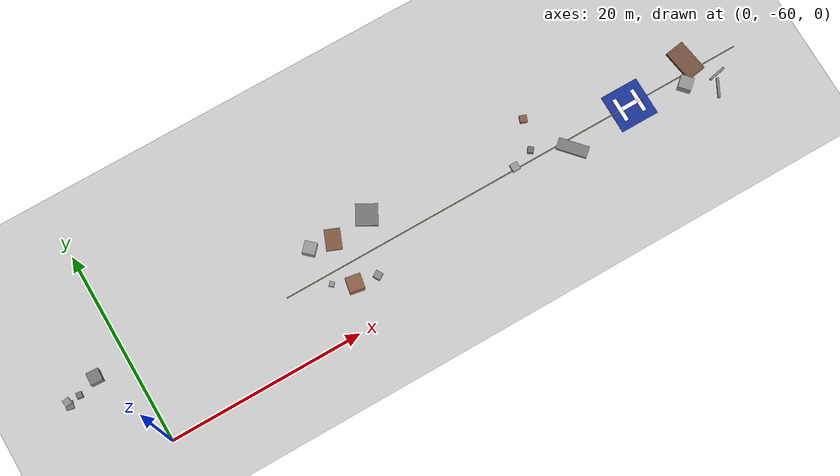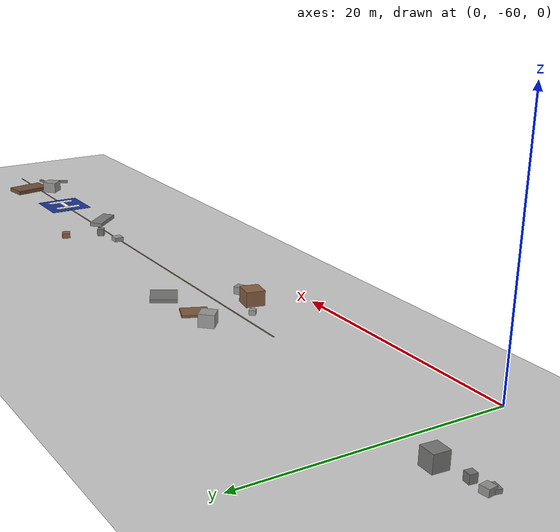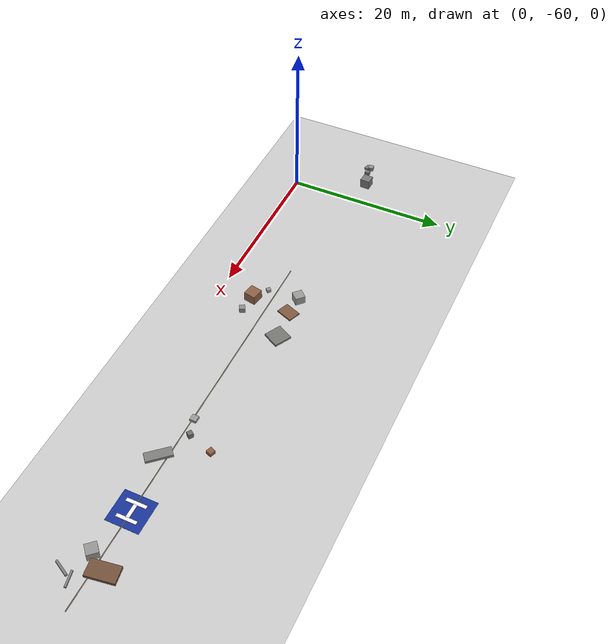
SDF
<sdf version="1.6">
 <world name="navitas_arena">
  <model name="ground_plane">
   <static>true</static>
   <link name="link">
    <collision name="collision">
     <geometry><plane><normal>0 0 1</normal><size>400 400</size></plane></geometry>
     <surface><friction><ode><mu>0.8</mu><mu2>0.8</mu2></ode></friction></surface>
    </collision>
    <visual name="visual">
     <cast_shadows>false</cast_shadows>
     <geometry><plane><normal>0 0 1</normal><size>400 400</size></plane></geometry>
     <material>
      <script><uri>file://media/materials/scripts/gazebo.material</uri><name>Gazebo/Grey</name></script>
     </material>
    </visual>
   </link>
  </model>
  <model name="gh_orta_2">
   <static>true</static>
   <pose>40.700 -53.600 0.010 0 0 0.000</pose>
   <link name="link">
    <collision name="col"><geometry><box><size>50.000 0.120 0.020</size></box></geometry></collision>
    <visual name="vis">
     <geometry><box><size>50.000 0.120 0.020</size></box></geometry>
     <material><ambient>0.42 0.38 0.32 1</ambient><diffuse>0.42 0.38 0.32 1</diffuse></material>
    </visual>
   </link>
  </model>
  <model name="deb_orta_0">
   <static>true</static>
   <pose>40.878 -53.400 0.186 0 0 1.565</pose>
   <link name="link">
    <collision name="col"><geometry><box><size>0.795 0.795 0.372</size></box></geometry></collision>
    <visual name="vis">
     <geometry><box><size>0.795 0.795 0.372</size></box></geometry>
     <material><ambient>0.60 0.60 0.59 1</ambient><diffuse>0.60 0.60 0.59 1</diffuse></material>
    </visual>
   </link>
  </model>
  <model name="deb_orta_1">
   <static>true</static>
   <pose>26.222 -50.371 0.142 0 0 2.640</pose>
   <link name="link">
    <collision name="col"><geometry><box><size>2.190 2.165 0.284</size></box></geometry></collision>
    <visual name="vis">
     <geometry><box><size>2.190 2.165 0.284</size></box></geometry>
     <material><ambient>0.46 0.46 0.45 1</ambient><diffuse>0.46 0.46 0.45 1</diffuse></material>
    </visual>
   </link>
  </model>
  <model name="deb_orta_6">
   <static>true</static>
   <pose>62.083 -56.425 0.127 0 0 1.087</pose>
   <link name="link">
    <collision name="col"><geometry><box><size>2.000 0.264 0.254</size></box></geometry></collision>
    <visual name="vis">
     <geometry><box><size>2.000 0.264 0.254</size></box></geometry>
     <material><ambient>0.48 0.48 0.47 1</ambient><diffuse>0.48 0.48 0.47 1</diffuse></material>
    </visual>
   </link>
  </model>
  <model name="deb_orta_22">
   <static>true</static>
   <pose>44.018 -49.706 0.232 0 0 1.216</pose>
   <link name="link">
    <collision name="col"><geometry><box><size>0.718 0.718 0.463</size></box></geometry></collision>
    <visual name="vis">
     <geometry><box><size>0.718 0.718 0.463</size></box></geometry>
     <material><ambient>0.54 0.37 0.27 1</ambient><diffuse>0.54 0.37 0.27 1</diffuse></material>
    </visual>
   </link>
  </model>
  <model name="deb_orta_27">
   <static>true</static>
   <pose>20.012 -54.576 0.198 0 0 2.403</pose>
   <link name="link">
    <collision name="col"><geometry><box><size>0.499 0.499 0.397</size></box></geometry></collision>
    <visual name="vis">
     <geometry><box><size>0.499 0.499 0.397</size></box></geometry>
     <material><ambient>0.58 0.58 0.57 1</ambient><diffuse>0.58 0.58 0.57 1</diffuse></material>
    </visual>
   </link>
  </model>
  <model name="deb_orta_31">
   <static>true</static>
   <pose>62.755 -55.158 0.103 0 0 0.202</pose>
   <link name="link">
    <collision name="col"><geometry><box><size>1.851 0.232 0.206</size></box></geometry></collision>
    <visual name="vis">
     <geometry><box><size>1.851 0.232 0.206</size></box></geometry>
     <material><ambient>0.50 0.50 0.49 1</ambient><diffuse>0.50 0.50 0.49 1</diffuse></material>
    </visual>
   </link>
  </model>
  <model name="deb_orta_33">
   <static>true</static>
   <pose>46.663 -54.556 0.178 0 0 2.300</pose>
   <link name="link">
    <collision name="col"><geometry><box><size>3.079 1.169 0.356</size></box></geometry></collision>
    <visual name="vis">
     <geometry><box><size>3.079 1.169 0.356</size></box></geometry>
     <material><ambient>0.49 0.49 0.48 1</ambient><diffuse>0.49 0.49 0.48 1</diffuse></material>
    </visual>
   </link>
  </model>
  <model name="deb_orta_37">
   <static>true</static>
   <pose>24.199 -56.049 0.306 0 0 2.086</pose>
   <link name="link">
    <collision name="col"><geometry><box><size>0.724 0.724 0.613</size></box></geometry></collision>
    <visual name="vis">
     <geometry><box><size>0.724 0.724 0.613</size></box></geometry>
     <material><ambient>0.55 0.55 0.54 1</ambient><diffuse>0.55 0.55 0.54 1</diffuse></material>
    </visual>
   </link>
  </model>
  <model name="deb_orta_42">
   <static>true</static>
   <pose>59.414 -54.596 0.511 0 0 0.737</pose>
   <link name="link">
    <collision name="col"><geometry><box><size>1.326 1.326 1.023</size></box></geometry></collision>
    <visual name="vis">
     <geometry><box><size>1.326 1.326 1.023</size></box></geometry>
     <material><ambient>0.58 0.58 0.57 1</ambient><diffuse>0.58 0.58 0.57 1</diffuse></material>
    </visual>
   </link>
  </model>
  <model name="deb_orta_54">
   <static>true</static>
   <pose>43.007 -52.745 0.318 0 0 2.534</pose>
   <link name="link">
    <collision name="col"><geometry><box><size>0.591 0.591 0.635</size></box></geometry></collision>
    <visual name="vis">
     <geometry><box><size>0.591 0.591 0.635</size></box></geometry>
     <material><ambient>0.43 0.43 0.42 1</ambient><diffuse>0.43 0.43 0.42 1</diffuse></material>
    </visual>
   </link>
  </model>
  <model name="deb_orta_56">
   <static>true</static>
   <pose>19.878 -50.637 0.524 0 0 0.820</pose>
   <link name="link">
    <collision name="col"><geometry><box><size>1.232 1.232 1.047</size></box></geometry></collision>
    <visual name="vis">
     <geometry><box><size>1.232 1.232 1.047</size></box></geometry>
     <material><ambient>0.60 0.60 0.59 1</ambient><diffuse>0.60 0.60 0.59 1</diffuse></material>
    </visual>
   </link>
  </model>
  <model name="deb_orta_61">
   <static>true</static>
   <pose>60.729 -52.533 0.196 0 0 1.726</pose>
   <link name="link">
    <collision name="col"><geometry><box><size>3.350 1.973 0.392</size></box></geometry></collision>
    <visual name="vis">
     <geometry><box><size>3.350 1.973 0.392</size></box></geometry>
     <material><ambient>0.45 0.32 0.23 1</ambient><diffuse>0.45 0.32 0.23 1</diffuse></material>
    </visual>
   </link>
  </model>
  <model name="deb_orta_73">
   <static>true</static>
   <pose>21.899 -55.737 0.613 0 0 1.384</pose>
   <link name="link">
    <collision name="col"><geometry><box><size>1.516 1.516 1.225</size></box></geometry></collision>
    <visual name="vis">
     <geometry><box><size>1.516 1.516 1.225</size></box></geometry>
     <material><ambient>0.55 0.38 0.27 1</ambient><diffuse>0.55 0.38 0.27 1</diffuse></material>
    </visual>
   </link>
  </model>
  <model name="deb_orta_80">
   <static>true</static>
   <pose>22.261 -50.860 0.101 0 0 1.187</pose>
   <link name="link">
    <collision name="col"><geometry><box><size>2.108 1.565 0.203</size></box></geometry></collision>
    <visual name="vis">
     <geometry><box><size>2.108 1.565 0.203</size></box></geometry>
     <material><ambient>0.50 0.35 0.25 1</ambient><diffuse>0.50 0.35 0.25 1</diffuse></material>
    </visual>
   </link>
  </model>
  <model name="hbpad_orta">
   <static>true</static>
   <pose>53.700 -53.600 0.010 0 0 0.000</pose>
   <link name="link">
    <collision name="col"><geometry><box><size>4.000 4.000 0.020</size></box></geometry></collision>
    <visual name="vis">
     <geometry><box><size>4.000 4.000 0.020</size></box></geometry>
     <material><ambient>0.10 0.20 0.60 1</ambient><diffuse>0.10 0.20 0.60 1</diffuse></material>
    </visual>
   </link>
  </model>
  <model name="H_orta_l">
   <static>true</static>
   <pose>52.700 -53.600 0.060 0 0 0.000</pose>
   <link name="link">
    <collision name="col"><geometry><box><size>0.400 2.400 0.100</size></box></geometry></collision>
    <visual name="vis">
     <geometry><box><size>0.400 2.400 0.100</size></box></geometry>
     <material><ambient>1.00 1.00 1.00 1</ambient><diffuse>1.00 1.00 1.00 1</diffuse></material>
    </visual>
   </link>
  </model>
  <model name="H_orta_r">
   <static>true</static>
   <pose>54.700 -53.600 0.060 0 0 0.000</pose>
   <link name="link">
    <collision name="col"><geometry><box><size>0.400 2.400 0.100</size></box></geometry></collision>
    <visual name="vis">
     <geometry><box><size>0.400 2.400 0.100</size></box></geometry>
     <material><ambient>1.00 1.00 1.00 1</ambient><diffuse>1.00 1.00 1.00 1</diffuse></material>
    </visual>
   </link>
  </model>
  <model name="H_orta_b">
   <static>true</static>
   <pose>53.700 -53.600 0.060 0 0 0.000</pose>
   <link name="link">
    <collision name="col"><geometry><box><size>2.000 0.400 0.100</size></box></geometry></collision>
    <visual name="vis">
     <geometry><box><size>2.000 0.400 0.100</size></box></geometry>
     <material><ambient>1.00 1.00 1.00 1</ambient><diffuse>1.00 1.00 1.00 1</diffuse></material>
    </visual>
   </link>
  </model>
  <model name="deb_zor_8">
   <static>true</static>
   <pose>-6.769 -52.024 0.253 0 0 0.128</pose>
   <link name="link">
    <collision name="col"><geometry><box><size>0.688 0.688 0.506</size></box></geometry></collision>
    <visual name="vis">
     <geometry><box><size>0.688 0.688 0.506</size></box></geometry>
     <material><ambient>0.57 0.57 0.56 1</ambient><diffuse>0.57 0.57 0.56 1</diffuse></material>
    </visual>
   </link>
  </model>
  <model name="deb_zor_31">
   <static>true</static>
   <pose>-3.409 -51.340 0.629 0 0 3.084</pose>
   <link name="link">
    <collision name="col"><geometry><box><size>1.228 1.228 1.257</size></box></geometry></collision>
    <visual name="vis">
     <geometry><box><size>1.228 1.228 1.257</size></box></geometry>
     <material><ambient>0.47 0.47 0.46 1</ambient><diffuse>0.47 0.47 0.46 1</diffuse></material>
    </visual>
   </link>
  </model>
  <model name="deb_zor_52">
   <static>true</static>
   <pose>-6.732 -52.385 0.152 0 0 2.930</pose>
   <link name="link">
    <collision name="col"><geometry><box><size>0.768 0.768 0.303</size></box></geometry></collision>
    <visual name="vis">
     <geometry><box><size>0.768 0.768 0.303</size></box></geometry>
     <material><ambient>0.46 0.46 0.45 1</ambient><diffuse>0.46 0.46 0.45 1</diffuse></material>
    </visual>
   </link>
  </model>
  <model name="deb_zor_110">
   <static>true</static>
   <pose>-5.470 -52.037 0.314 0 0 1.446</pose>
   <link name="link">
    <collision name="col"><geometry><box><size>0.567 0.567 0.629</size></box></geometry></collision>
    <visual name="vis">
     <geometry><box><size>0.567 0.567 0.629</size></box></geometry>
     <material><ambient>0.45 0.45 0.44 1</ambient><diffuse>0.45 0.45 0.44 1</diffuse></material>
    </visual>
   </link>
  </model>
 </world>
</sdf>
